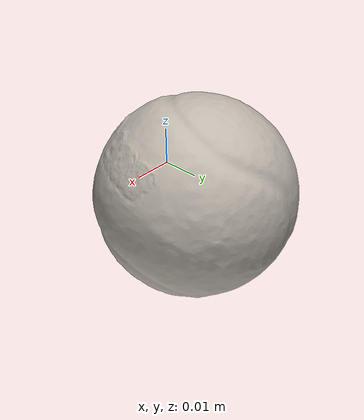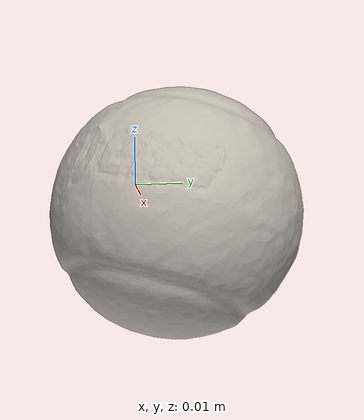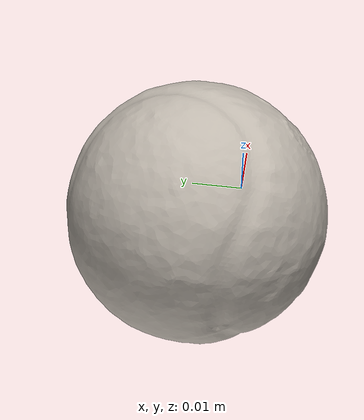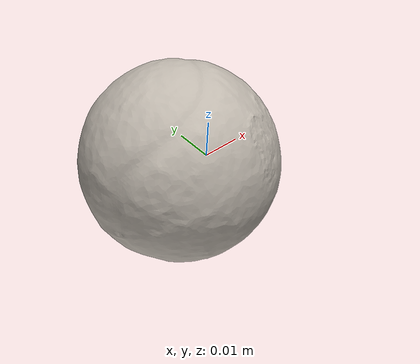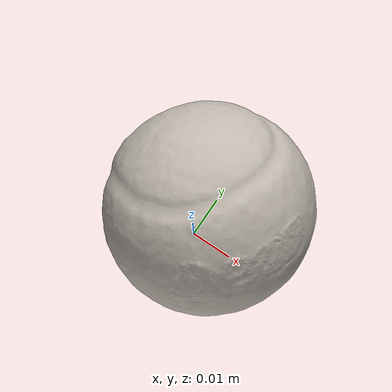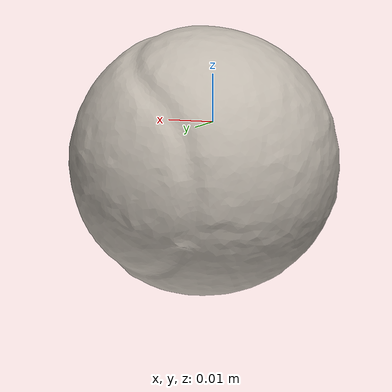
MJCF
<mujoco model="bread">
  <asset>
    <mesh file="nontextured.stl" name="obj_mesh" scale="0.8 0.8 0.8"/>
    <texture file="../../../../../textures/bread.png" type="2d" name="tex-bread" />
    <material name="bread" reflectance="0.7" texrepeat="15 15" texture="tex-bread" texuniform="true"/>
  </asset>
  <worldbody>
    <body>
      <body name="collision">
        <geom pos="-0.0082115 0.044278 -0.0331315" mesh="obj_mesh" type="mesh" solimp="0.998 0.998 0.001" solref="0.001 1" density="50" friction="0.95 0.3 0.1"  material="bread" group="1" condim="4"/>
      </body>
      <body name="visual">
        <geom pos="-0.0082115 0.044278 -0.0331315" mesh="obj_mesh" type="mesh" material="bread"  conaffinity="0" contype="0"  group="0" mass="0.0001"/>
        <geom pos="-0.0082115 0.044278 -0.0331315" mesh="obj_mesh" type="mesh" material="bread"  conaffinity="0" contype="0"  group="1" mass="0.0001"/>
      </body>
      <site rgba="0 0 0 0" size="0.005" pos="0 0 -0.0332285" name="bottom_site"/>
      <site rgba="0 0 0 0" size="0.005" pos="0 0 0.0332285" name="top_site"/>
      <site rgba="0 0 0 0" size="0.005" pos="0.0334875 0.033515 0.0332285" name="horizontal_radius_site"/>
    </body>
  </worldbody>
</mujoco>
